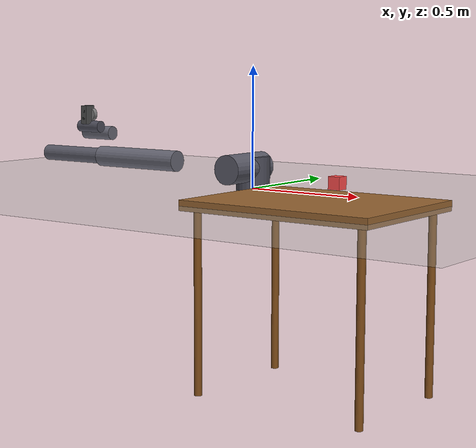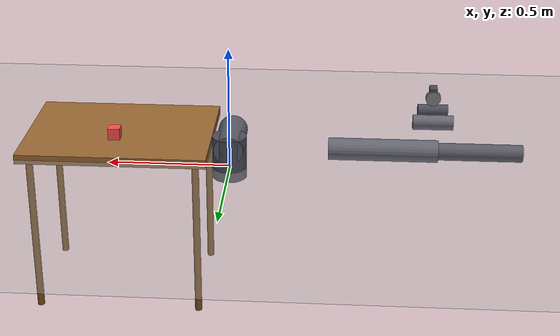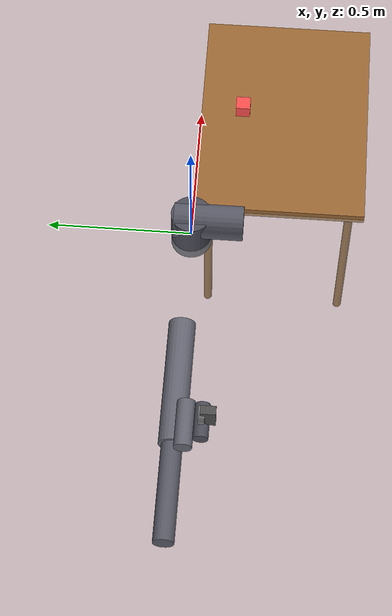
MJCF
<mujoco model="ur5e_scene">
  <compiler angle="radian" meshdir="meshes"/>

  <option timestep="0.002" gravity="0 0 -9.81">
    <flag contact="enable" gravity="enable"/>
  </option>

  <visual>
    <global offwidth="800" offheight="600"/>
  </visual>

  <asset>
    <texture type="skybox" builtin="gradient" rgb1="0.3 0.5 0.7" rgb2="0.1 0.2 0.3" width="512" height="512"/>
  </asset>

  <worldbody>
    <light name="light" pos="1 1 2" dir="-0.5 -0.5 -1" diffuse="0.8 0.8 0.8"/>

    <!-- Floor -->
    <geom name="floor" type="plane" size="2 2 0.01" rgba="0.7 0.7 0.7 1"/>

    <!-- Table -->
    <body name="table" pos="0.5 -0.3 0">
      <geom name="table_top" type="box" size="0.4 0.3 0.02" rgba="0.6 0.4 0.2 1"/>
      <geom name="table_leg1" type="cylinder" size="0.015 0.35" pos="0.35 0.25 -0.37" rgba="0.5 0.3 0.1 1"/>
      <geom name="table_leg2" type="cylinder" size="0.015 0.35" pos="0.35 -0.25 -0.37" rgba="0.5 0.3 0.1 1"/>
      <geom name="table_leg3" type="cylinder" size="0.015 0.35" pos="-0.35 0.25 -0.37" rgba="0.5 0.3 0.1 1"/>
      <geom name="table_leg4" type="cylinder" size="0.015 0.35" pos="-0.35 -0.25 -0.37" rgba="0.5 0.3 0.1 1"/>
    </body>

    <!-- Target object (block) -->
    <body name="target_block" pos="0.5 -0.15 0.07">
      <joint name="block_free" type="free" limited="false"/>
      <geom name="block_geom" type="box" size="0.025 0.025 0.025" rgba="1 0.3 0.3 1" mass="0.05"/>
    </body>

    <!-- UR5 Arm (6 revolute joints)                  -->
    <!-- Modified-DH chain: body pos relative to      -->
    <!-- parent with zero joint angle + alpha quat    -->

    <!-- Joint 1: base rotation (z-axis) -->
    <body name="base" pos="0 0 0">
      <geom name="base_geom" type="cylinder" size="0.07 0.089" pos="0 0 0.0445" rgba="0.3 0.3 0.35 1"/>
      <joint name="shoulder_pan" type="hinge" axis="0 0 1" range="-6.283 6.283"/>

      <!-- Joint 2: shoulder lift (alpha=pi/2) -->
      <body name="shoulder" pos="0 0 0.089159" quat="0.7071 0.7071 0 0">
        <geom name="shoulder_geom" type="cylinder" size="0.06 0.12" pos="0 0 0.06" rgba="0.35 0.35 0.4 1"/>
        <joint name="shoulder_lift" type="hinge" axis="0 0 1" range="-6.283 6.283"/>

        <!-- Joint 3: elbow (alpha=0) -->
        <body name="upper_arm" pos="-0.425 0 0" quat="1 0 0 0">
          <geom name="upper_arm_geom" type="cylinder" size="0.045 0.22" pos="-0.196 0 0" euler="0 1.57 0" rgba="0.4 0.4 0.45 1"/>
          <joint name="elbow" type="hinge" axis="0 0 1" range="-6.283 6.283"/>

          <!-- Joint 4: wrist 1 (alpha=pi/2) -->
          <body name="forearm" pos="-0.39225 0 0" quat="1 0 0 0">
            <geom name="forearm_geom" type="cylinder" size="0.035 0.18" pos="-0.18 0 0" euler="0 1.57 0" rgba="0.35 0.35 0.4 1"/>
            <joint name="wrist1" type="hinge" axis="0 0 1" range="-6.283 6.283"/>

            <!-- Joint 5: wrist 2 (alpha=pi/2) -->
            <body name="wrist1_link" pos="0 0.10915 0" quat="0.7071 0.7071 0 0">
              <geom name="wrist1_geom" type="cylinder" size="0.03 0.08" pos="0 0.04 0" euler="0 1.57 0" rgba="0.4 0.4 0.45 1"/>
              <joint name="wrist2" type="hinge" axis="0 0 1" range="-6.283 6.283"/>

              <!-- Joint 6: wrist 3 (alpha=-pi/2) -->
              <body name="wrist2_link" pos="0 0.09465 0" quat="0.7071 -0.7071 0 0">
                <geom name="wrist2_geom" type="cylinder" size="0.025 0.06" pos="0 0.03 0" euler="0 1.57 0" rgba="0.3 0.3 0.35 1"/>
                <joint name="wrist3" type="hinge" axis="0 0 1" range="-6.283 6.283"/>

                <!-- Flange + Gripper (alpha=0) -->
                <body name="flange" pos="0 0.0823 0" quat="1 0 0 0">
                  <geom name="flange_geom" type="cylinder" size="0.03 0.01" rgba="0.5 0.5 0.5 1"/>

                  <!-- Robotiq 2F-85 Gripper -->
                  <body name="gripper_base" pos="0 0 0.02">
                    <geom name="gripper_body" type="box" size="0.015 0.04 0.025" rgba="0.3 0.3 0.3 1"/>

                    <!-- Left finger -->
                    <body name="left_finger" pos="0 0.02 0">
                      <joint name="left_finger_joint" type="slide" axis="0 1 0" range="-0.04 0.0"/>
                      <geom name="left_finger_pad" type="box" size="0.005 0.005 0.025" pos="0 -0.005 0" rgba="0.2 0.2 0.2 1"/>
                      <site name="left_touch_site" type="box" size="0.005 0.005 0.025" pos="0 -0.005 0"/>
                    </body>

                    <!-- Right finger -->
                    <body name="right_finger" pos="0 -0.02 0">
                      <joint name="right_finger_joint" type="slide" axis="0 -1 0" range="-0.04 0.0"/>
                      <geom name="right_finger_pad" type="box" size="0.005 0.005 0.025" pos="0 0.005 0" rgba="0.2 0.2 0.2 1"/>
                      <site name="right_touch_site" type="box" size="0.005 0.005 0.025" pos="0 0.005 0"/>
                    </body>
                  </body>
                </body>
              </body>
            </body>
          </body>
        </body>
      </body>
    </body>

    <!-- Camera sensor -->
    <camera name="wrist_cam" mode="fixed" pos="0.5 0 1.5" xyaxes="1 0 0 0 1 0" fovy="45"/>

  </worldbody>

  <sensor>
    <framepos name="ee_pos" objtype="body" objname="flange"/>
    <framequat name="ee_quat" objtype="body" objname="flange"/>
    <touch name="left_touch" site="left_touch_site"/>
    <touch name="right_touch" site="right_touch_site"/>
  </sensor>

  <actuator>
    <position name="j1_act" joint="shoulder_pan" kp="500" kv="40"/>
    <position name="j2_act" joint="shoulder_lift" kp="500" kv="40"/>
    <position name="j3_act" joint="elbow" kp="500" kv="40"/>
    <position name="j4_act" joint="wrist1" kp="500" kv="40"/>
    <position name="j5_act" joint="wrist2" kp="500" kv="40"/>
    <position name="j6_act" joint="wrist3" kp="500" kv="40"/>
    <position name="left_grip_act" joint="left_finger_joint" kp="200" kv="20"/>
    <position name="right_grip_act" joint="right_finger_joint" kp="200" kv="20"/>
  </actuator>
</mujoco>
